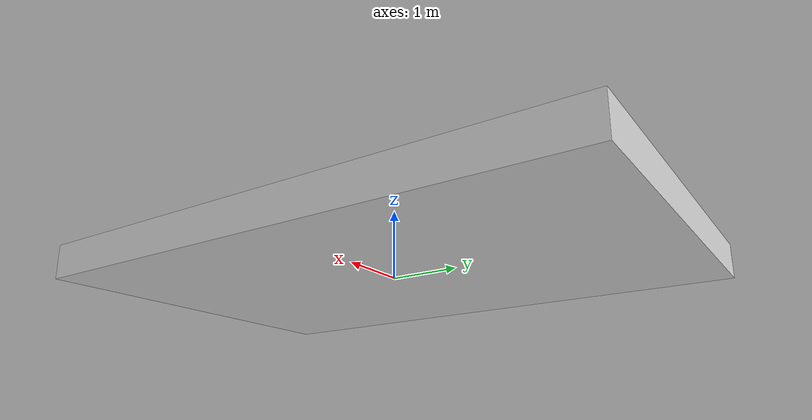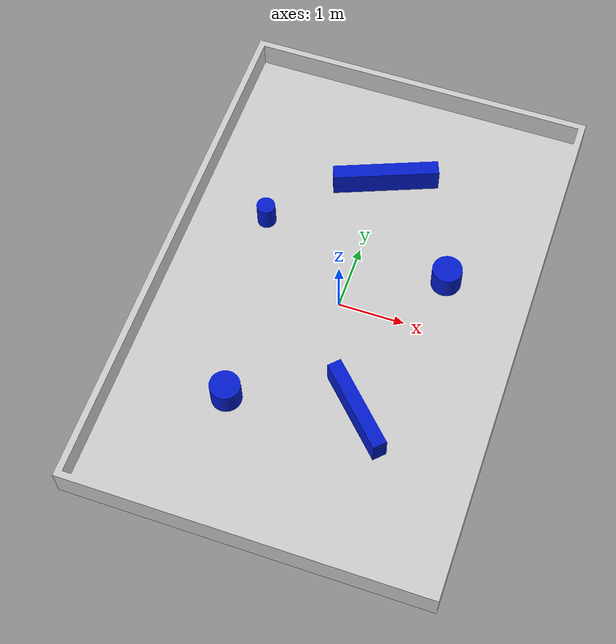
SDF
<?xml version="1.0" ?>
<sdf version="1.6">
  <model name="omni_stage">
    <static>true</static>
    <link name="link">
      <collision name="collision">
        <geometry>
          <mesh>
            <scale>1 1 1</scale>
            <uri>model://omni_stage/meshes/omni_stage.stl</uri>
          </mesh>
           <surface>
            <friction>
              <ode>
                <mu>1.2</mu>
                <mu2>1.2</mu2>
              </ode>
            </friction>
          </surface>
        </geometry>
      </collision>
      <visual name="visual">
        <geometry>
          <mesh>
            <scale>1 1 1</scale>
            <uri>model://omni_stage/meshes/omni_stage.dae</uri>
          </mesh>
        </geometry>
      </visual>
    </link>
  </model>
</sdf>
